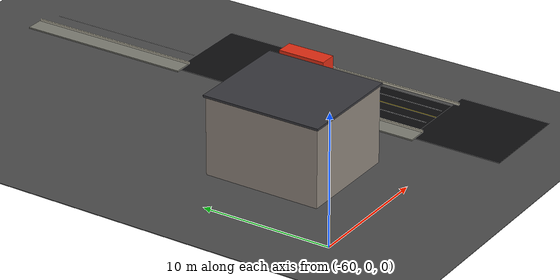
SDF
<sdf version="1.9">
 <world name="smart_city_world">
  <model name="ground">
   <static>true</static>
   <link name="link">
    <collision name="collision"><geometry><box><size>145 145 0.05</size></box></geometry></collision>
    <visual name="visual">
     <geometry><box><size>145 145 0.05</size></box></geometry>
     <material><ambient>0.30 0.30 0.30 1</ambient><diffuse>0.30 0.30 0.30 1</diffuse></material>
    </visual>
   </link>
  </model>
  <model name="sidewalk_e21_R">
   <static>true</static>
   <pose>-43.350 30.000 0.075 0 0 -1.570796</pose>
   <link name="link">
    <visual name="visual">
     <geometry><box><size>13.600 1.350 0.100</size></box></geometry>
     <material><ambient>0.5 0.5 0.46 1</ambient><diffuse>0.5 0.5 0.46 1</diffuse></material>
    </visual>
   </link>
  </model>
  <model name="curb_e21_R">
   <static>true</static>
   <pose>-42.550 30.000 0.130 0 0 -1.570796</pose>
   <link name="link">
    <visual name="visual">
     <geometry><box><size>13.600 0.120 0.180</size></box></geometry>
     <material><ambient>0.8 0.78 0.7 1</ambient><diffuse>0.8 0.78 0.7 1</diffuse></material>
    </visual>
   </link>
  </model>
  <model name="edge_line_e21_R">
   <static>true</static>
   <pose>-41.080 30.000 0.054 0 0 -1.570796</pose>
   <link name="link">
    <visual name="visual">
     <geometry><box><size>12.400 0.035 0.010</size></box></geometry>
     <material><ambient>0.85 0.85 0.85 1</ambient><diffuse>0.85 0.85 0.85 1</diffuse></material>
    </visual>
   </link>
  </model>
  <model name="road_e22">
   <static>true</static>
   <pose>-40.000 10.000 0.018 0 0 -1.570796</pose>
   <link name="link">
    <collision name="collision"><geometry><box><size>13.600 4.350 0.030</size></box></geometry></collision>
    <visual name="visual">
     <geometry><box><size>13.600 4.350 0.030</size></box></geometry>
     <material><ambient>0.045 0.047 0.05 1</ambient><diffuse>0.045 0.047 0.05 1</diffuse></material>
    </visual>
   </link>
  </model>
  <model name="center_line_e22">
   <static>true</static>
   <pose>-40.000 10.000 0.052 0 0 -1.570796</pose>
   <link name="link">
    <visual name="visual">
     <geometry><box><size>12.800 0.070 0.010</size></box></geometry>
     <material><ambient>1 0.86 0.05 1</ambient><diffuse>1 0.86 0.05 1</diffuse></material>
    </visual>
   </link>
  </model>
  <model name="curb_e22_L">
   <static>true</static>
   <pose>-37.450 10.000 0.130 0 0 -1.570796</pose>
   <link name="link">
    <visual name="visual">
     <geometry><box><size>13.600 0.120 0.180</size></box></geometry>
     <material><ambient>0.8 0.78 0.7 1</ambient><diffuse>0.8 0.78 0.7 1</diffuse></material>
    </visual>
   </link>
  </model>
  <model name="edge_line_e22_L">
   <static>true</static>
   <pose>-38.920 10.000 0.054 0 0 -1.570796</pose>
   <link name="link">
    <visual name="visual">
     <geometry><box><size>12.400 0.035 0.010</size></box></geometry>
     <material><ambient>0.85 0.85 0.85 1</ambient><diffuse>0.85 0.85 0.85 1</diffuse></material>
    </visual>
   </link>
  </model>
  <model name="sidewalk_e22_R">
   <static>true</static>
   <pose>-43.350 10.000 0.075 0 0 -1.570796</pose>
   <link name="link">
    <visual name="visual">
     <geometry><box><size>13.600 1.350 0.100</size></box></geometry>
     <material><ambient>0.5 0.5 0.46 1</ambient><diffuse>0.5 0.5 0.46 1</diffuse></material>
    </visual>
   </link>
  </model>
  <model name="curb_e22_R">
   <static>true</static>
   <pose>-42.550 10.000 0.130 0 0 -1.570796</pose>
   <link name="link">
    <visual name="visual">
     <geometry><box><size>13.600 0.120 0.180</size></box></geometry>
     <material><ambient>0.8 0.78 0.7 1</ambient><diffuse>0.8 0.78 0.7 1</diffuse></material>
    </visual>
   </link>
  </model>
  <model name="edge_line_e22_R">
   <static>true</static>
   <pose>-41.080 10.000 0.054 0 0 -1.570796</pose>
   <link name="link">
    <visual name="visual">
     <geometry><box><size>12.400 0.035 0.010</size></box></geometry>
     <material><ambient>0.85 0.85 0.85 1</ambient><diffuse>0.85 0.85 0.85 1</diffuse></material>
    </visual>
   </link>
  </model>
  <model name="intersection_plate_n6">
   <static>true</static>
   <pose>-40.000 20.000 0.025 0 0 0.000000</pose>
   <link name="link">
    <collision name="collision"><geometry><box><size>7.200 7.200 0.035</size></box></geometry></collision>
    <visual name="visual">
     <geometry><box><size>7.200 7.200 0.035</size></box></geometry>
     <material><ambient>0.055 0.055 0.058 1</ambient><diffuse>0.055 0.055 0.058 1</diffuse></material>
    </visual>
   </link>
  </model>
  <model name="intersection_plate_n11">
   <static>true</static>
   <pose>-40.000 0.000 0.025 0 0 0.000000</pose>
   <link name="link">
    <collision name="collision"><geometry><box><size>7.200 7.200 0.035</size></box></geometry></collision>
    <visual name="visual">
     <geometry><box><size>7.200 7.200 0.035</size></box></geometry>
     <material><ambient>0.055 0.055 0.058 1</ambient><diffuse>0.055 0.055 0.058 1</diffuse></material>
    </visual>
   </link>
  </model>
  <model name="parking_bus_2">
   <static>true</static>
   <pose>-39.400 15.000 0.052 0 0 0.000000</pose>
   <link name="link">
    <collision name="collision"><geometry><box><size>4.700 2.250 0.050</size></box></geometry></collision>
    <visual name="visual">
     <geometry><box><size>4.700 2.250 0.050</size></box></geometry>
     <material><ambient>0.92 0.92 0.88 1</ambient><diffuse>0.92 0.92 0.88 1</diffuse></material>
    </visual>
   </link>
  </model>
  <model name="city_hall">
   <static>true</static>
   <pose>-52.000 8.000 3.000 0 0 0.000000</pose>
   <link name="link">
    <collision name="collision"><geometry><box><size>8.000 9.000 6.000</size></box></geometry></collision>
    <visual name="visual">
     <geometry><box><size>8.000 9.000 6.000</size></box></geometry>
     <material><ambient>0.58 0.54 0.5 1</ambient><diffuse>0.58 0.54 0.5 1</diffuse></material>
    </visual>
   </link>
  </model>
  <model name="city_hall_roof">
   <static>true</static>
   <pose>-52.000 8.000 6.080 0 0 0.000000</pose>
   <link name="link">
    <visual name="visual">
     <geometry><box><size>8.250 9.250 0.160</size></box></geometry>
     <material><ambient>0.22 0.22 0.24 1</ambient><diffuse>0.22 0.22 0.24 1</diffuse></material>
    </visual>
   </link>
  </model>
  <model name="bus_2">
   <pose>-39.400 15.000 0.28 0 0 -1.5700</pose>
   <link name="base_link">
    <inertial>
     <pose>0 0 0.22 0 0 0</pose>
     <mass>3500</mass>
     <inertia><ixx>825</ixx><iyy>4500</iyy><izz>4750</izz><ixy>0</ixy><ixz>0</ixz><iyz>0</iyz></inertia>
    </inertial>
    <collision name="body_collision">
     <pose>0 0 0.60 0 0 0</pose>
     <geometry><box><size>3.8 1.35 1.0</size></box></geometry>
     <surface>
      <friction><ode><mu>4.0</mu><mu2>4.0</mu2><slip1>0.0</slip1><slip2>0.0</slip2></ode></friction>
      <contact>
       <ode><kp>1500000</kp><kd>30000</kd><max_vel>0.05</max_vel><min_depth>0.001</min_depth></ode>
      </contact>
      <bounce><restitution_coefficient>0.0</restitution_coefficient><threshold>100000.0</threshold></bounce>
     </surface>
    </collision>
    <visual name="body_visual">
     <pose>0 0 0.975 0 0 0</pose>
     <geometry><box><size>3.8 1.35 1.25</size></box></geometry>
     <material><ambient>0.90 0.18 0.08 1</ambient><diffuse>0.90 0.18 0.08 1</diffuse></material>
    </visual>
    <sensor name="lidar" type="gpu_lidar">
     <pose>2.020 0 1.750 0 0 0</pose>
     <topic>/bus_2/scan</topic>
     <update_rate>10</update_rate>
     <lidar>
      <scan>
       <horizontal>
        <samples>360</samples>
        <resolution>1</resolution>
        <min_angle>-3.14159</min_angle>
        <max_angle>3.14159</max_angle>
       </horizontal>
      </scan>
      <range><min>0.12</min><max>18.0</max><resolution>0.03</resolution></range>
     </lidar>
     <always_on>1</always_on>
     <visualize>false</visualize>
    </sensor>
   </link>
   <link name="left_wheel">
    <pose>0 0.525 0.220 1.5708 0 0</pose>
    <collision name="collision">
     <geometry><cylinder><radius>0.22</radius><length>0.16</length></cylinder></geometry>
     <surface>
      <friction><ode><mu>4.0</mu><mu2>4.0</mu2><slip1>0.0</slip1><slip2>0.0</slip2></ode></friction>
      <contact>
       <ode><kp>1500000</kp><kd>30000</kd><max_vel>0.05</max_vel><min_depth>0.001</min_depth></ode>
      </contact>
      <bounce><restitution_coefficient>0.0</restitution_coefficient><threshold>100000.0</threshold></bounce>
     </surface>
    </collision>
    <visual name="visual">
     <geometry><cylinder><radius>0.22</radius><length>0.16</length></cylinder></geometry>
     <material><ambient>0.01 0.01 0.01 1</ambient><diffuse>0.01 0.01 0.01 1</diffuse></material>
    </visual>
   </link>
   <link name="right_wheel">
    <pose>0 -0.525 0.220 1.5708 0 0</pose>
    <collision name="collision">
     <geometry><cylinder><radius>0.22</radius><length>0.16</length></cylinder></geometry>
     <surface>
      <friction><ode><mu>4.0</mu><mu2>4.0</mu2><slip1>0.0</slip1><slip2>0.0</slip2></ode></friction>
      <contact>
       <ode><kp>1500000</kp><kd>30000</kd><max_vel>0.05</max_vel><min_depth>0.001</min_depth></ode>
      </contact>
      <bounce><restitution_coefficient>0.0</restitution_coefficient><threshold>100000.0</threshold></bounce>
     </surface>
    </collision>
    <visual name="visual">
     <geometry><cylinder><radius>0.22</radius><length>0.16</length></cylinder></geometry>
     <material><ambient>0.01 0.01 0.01 1</ambient><diffuse>0.01 0.01 0.01 1</diffuse></material>
    </visual>
   </link>
   <joint name="left_wheel_joint" type="revolute">
    <parent>base_link</parent>
    <child>left_wheel</child>
    <axis>
     <xyz>0 0 1</xyz>
     <limit><lower>-1e16</lower><upper>1e16</upper></limit>
     <dynamics><damping>3</damping><friction>1</friction></dynamics>
    </axis>
   </joint>
   <joint name="right_wheel_joint" type="revolute">
    <parent>base_link</parent>
    <child>right_wheel</child>
    <axis>
     <xyz>0 0 1</xyz>
     <limit><lower>-1e16</lower><upper>1e16</upper></limit>
     <dynamics><damping>3</damping><friction>1</friction></dynamics>
    </axis>
   </joint>
   <plugin filename="gz-sim-diff-drive-system" name="gz::sim::systems::DiffDrive">
    <left_joint>left_wheel_joint</left_joint>
    <right_joint>right_wheel_joint</right_joint>
    <wheel_separation>1.05</wheel_separation>
    <wheel_radius>0.22</wheel_radius>
    <topic>/bus_2/cmd_vel</topic>
    <odom_topic>/bus_2/odom</odom_topic>
    <frame_id>bus_2/odom</frame_id>
    <child_frame_id>bus_2/base_link</child_frame_id>
    <odom_publish_frequency>30</odom_publish_frequency>
   </plugin>
   <plugin filename="libmodel_world_pose_publisher.so" name="smart_city::ModelWorldPosePublisher"/>
  </model>
 </world>
</sdf>
